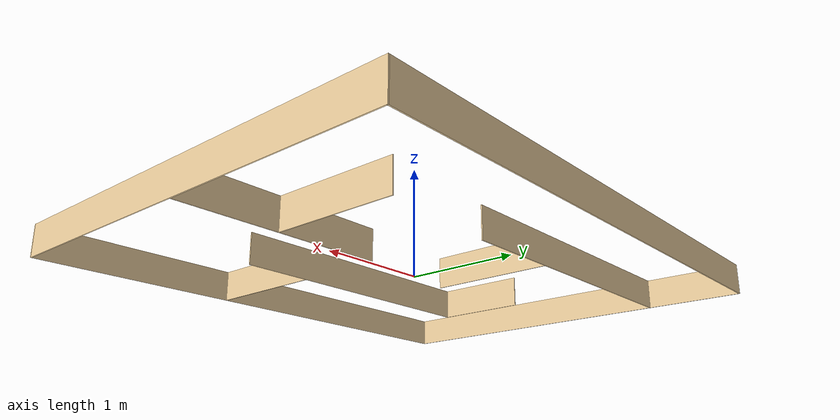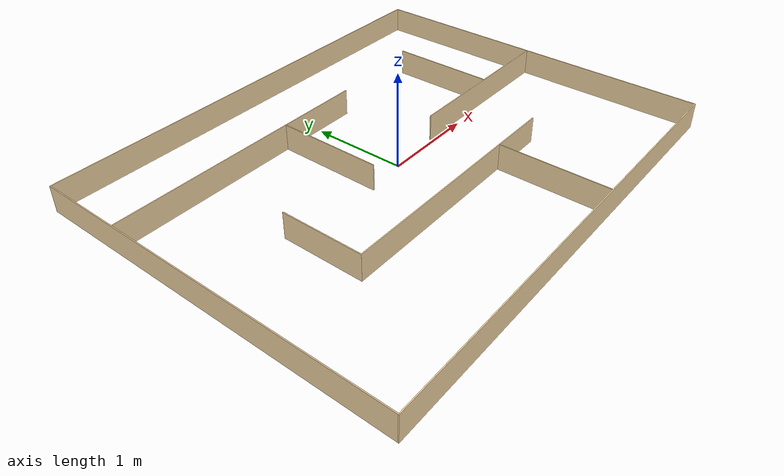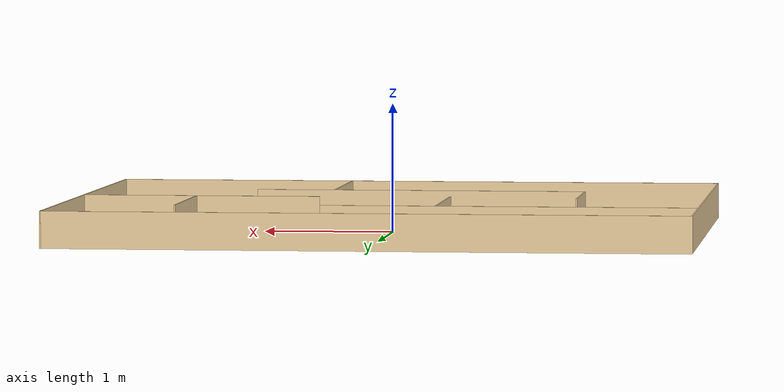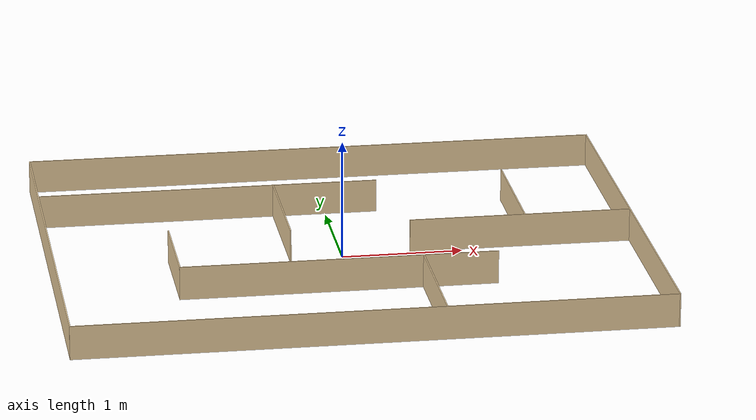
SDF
<?xml version='1.0'?>
<sdf version='1.6'>
  <model name='maze_2'>
    <link name='Wall_1'>
      <pose frame=''>0 -1.925 0 0 -0 0</pose>
      <self_collide>0</self_collide>
      <kinematic>0</kinematic>
      <visual name='Wall_1_Visual'>
        <pose frame=''>0 0 0.14 0 -0 0</pose>
        <geometry>
          <box>
            <size>4.86027 0.01 0.28</size>
          </box>
        </geometry>
        <material>
          <script>
            <uri>file://media/materials/scripts/gazebo.material</uri>
            <name>Gazebo/Grey</name>
          </script>
          <ambient>0.921569 0.807843 0.615686 1</ambient>
          <diffuse>0.7 0.7 0.7 1</diffuse>
          <specular>0.01 0.01 0.01 1</specular>
          <emissive>0 0 0 1</emissive>
        </material>
        <cast_shadows>1</cast_shadows>
        <transparency>0</transparency>
      </visual>
      <collision name='Wall_1_Collision'>
        <laser_retro>0</laser_retro>
        <max_contacts>10</max_contacts>
        <pose frame=''>0 0 0.14 0 -0 0</pose>
        <geometry>
          <box>
            <size>4.86027 0.01 0.28</size>
          </box>
        </geometry>
        <surface>
          <friction>
            <ode>
              <mu>1</mu>
              <mu2>1</mu2>
              <fdir1>0 0 0</fdir1>
              <slip1>0</slip1>
              <slip2>0</slip2>
            </ode>
            <torsional>
              <coefficient>1</coefficient>
              <patch_radius>0</patch_radius>
              <surface_radius>0</surface_radius>
              <use_patch_radius>1</use_patch_radius>
              <ode>
                <slip>0</slip>
              </ode>
            </torsional>
          </friction>
          <bounce>
            <restitution_coefficient>0</restitution_coefficient>
            <threshold>1e+06</threshold>
          </bounce>
          <contact>
            <collide_without_contact>0</collide_without_contact>
            <collide_without_contact_bitmask>1</collide_without_contact_bitmask>
            <collide_bitmask>1</collide_bitmask>
            <ode>
              <soft_cfm>0</soft_cfm>
              <soft_erp>0.2</soft_erp>
              <kp>1e+13</kp>
              <kd>1</kd>
              <max_vel>0.01</max_vel>
              <min_depth>0</min_depth>
            </ode>
            <bullet>
              <split_impulse>1</split_impulse>
              <split_impulse_penetration_threshold>-0.01</split_impulse_penetration_threshold>
              <soft_cfm>0</soft_cfm>
              <soft_erp>0.2</soft_erp>
              <kp>1e+13</kp>
              <kd>1</kd>
            </bullet>
          </contact>
        </surface>
      </collision>
    </link>
    <link name='Wall_10'>
      <pose frame=''>1.49951 0.041 0 0 -0 3.14159</pose>
      <self_collide>0</self_collide>
      <kinematic>0</kinematic>
      <visual name='Wall_10_Visual'>
        <pose frame=''>0 0 0.14 0 -0 0</pose>
        <geometry>
          <box>
            <size>1.86 0.01 0.28</size>
          </box>
        </geometry>
        <material>
          <script>
            <uri>file://media/materials/scripts/gazebo.material</uri>
            <name>Gazebo/Grey</name>
          </script>
          <ambient>0.921569 0.807843 0.615686 1</ambient>
          <diffuse>0.7 0.7 0.7 1</diffuse>
          <specular>0.01 0.01 0.01 1</specular>
          <emissive>0 0 0 1</emissive>
        </material>
        <cast_shadows>1</cast_shadows>
        <transparency>0</transparency>
      </visual>
      <collision name='Wall_10_Collision'>
        <laser_retro>0</laser_retro>
        <max_contacts>10</max_contacts>
        <pose frame=''>0 0 0.14 0 -0 0</pose>
        <geometry>
          <box>
            <size>1.86 0.01 0.28</size>
          </box>
        </geometry>
        <surface>
          <friction>
            <ode>
              <mu>1</mu>
              <mu2>1</mu2>
              <fdir1>0 0 0</fdir1>
              <slip1>0</slip1>
              <slip2>0</slip2>
            </ode>
            <torsional>
              <coefficient>1</coefficient>
              <patch_radius>0</patch_radius>
              <surface_radius>0</surface_radius>
              <use_patch_radius>1</use_patch_radius>
              <ode>
                <slip>0</slip>
              </ode>
            </torsional>
          </friction>
          <bounce>
            <restitution_coefficient>0</restitution_coefficient>
            <threshold>1e+06</threshold>
          </bounce>
          <contact>
            <collide_without_contact>0</collide_without_contact>
            <collide_without_contact_bitmask>1</collide_without_contact_bitmask>
            <collide_bitmask>1</collide_bitmask>
            <ode>
              <soft_cfm>0</soft_cfm>
              <soft_erp>0.2</soft_erp>
              <kp>1e+13</kp>
              <kd>1</kd>
              <max_vel>0.01</max_vel>
              <min_depth>0</min_depth>
            </ode>
            <bullet>
              <split_impulse>1</split_impulse>
              <split_impulse_penetration_threshold>-0.01</split_impulse_penetration_threshold>
              <soft_cfm>0</soft_cfm>
              <soft_erp>0.2</soft_erp>
              <kp>1e+13</kp>
              <kd>1</kd>
            </bullet>
          </contact>
        </surface>
      </collision>
    </link>
    <link name='Wall_12'>
      <pose frame=''>1.53594 0.594249 0 0 -0 1.5708</pose>
      <self_collide>0</self_collide>
      <kinematic>0</kinematic>
      <visual name='Wall_12_Visual'>
        <pose frame=''>0 0 0.14 0 -0 0</pose>
        <geometry>
          <box>
            <size>1.11 0.01 0.28</size>
          </box>
        </geometry>
        <material>
          <script>
            <uri>file://media/materials/scripts/gazebo.material</uri>
            <name>Gazebo/Grey</name>
          </script>
          <ambient>0.921569 0.807843 0.615686 1</ambient>
          <diffuse>0.7 0.7 0.7 1</diffuse>
          <specular>0.01 0.01 0.01 1</specular>
          <emissive>0 0 0 1</emissive>
        </material>
        <cast_shadows>1</cast_shadows>
        <transparency>0</transparency>
      </visual>
      <collision name='Wall_12_Collision'>
        <laser_retro>0</laser_retro>
        <max_contacts>10</max_contacts>
        <pose frame=''>0 0 0.14 0 -0 0</pose>
        <geometry>
          <box>
            <size>1.11 0.01 0.28</size>
          </box>
        </geometry>
        <surface>
          <friction>
            <ode>
              <mu>1</mu>
              <mu2>1</mu2>
              <fdir1>0 0 0</fdir1>
              <slip1>0</slip1>
              <slip2>0</slip2>
            </ode>
            <torsional>
              <coefficient>1</coefficient>
              <patch_radius>0</patch_radius>
              <surface_radius>0</surface_radius>
              <use_patch_radius>1</use_patch_radius>
              <ode>
                <slip>0</slip>
              </ode>
            </torsional>
          </friction>
          <bounce>
            <restitution_coefficient>0</restitution_coefficient>
            <threshold>1e+06</threshold>
          </bounce>
          <contact>
            <collide_without_contact>0</collide_without_contact>
            <collide_without_contact_bitmask>1</collide_without_contact_bitmask>
            <collide_bitmask>1</collide_bitmask>
            <ode>
              <soft_cfm>0</soft_cfm>
              <soft_erp>0.2</soft_erp>
              <kp>1e+13</kp>
              <kd>1</kd>
              <max_vel>0.01</max_vel>
              <min_depth>0</min_depth>
            </ode>
            <bullet>
              <split_impulse>1</split_impulse>
              <split_impulse_penetration_threshold>-0.01</split_impulse_penetration_threshold>
              <soft_cfm>0</soft_cfm>
              <soft_erp>0.2</soft_erp>
              <kp>1e+13</kp>
              <kd>1</kd>
            </bullet>
          </contact>
        </surface>
      </collision>
    </link>
    <link name='Wall_14'>
      <pose frame=''>-1.434 -0.346 0 0 0 -1.5708</pose>
      <self_collide>0</self_collide>
      <kinematic>0</kinematic>
      <visual name='Wall_14_Visual'>
        <pose frame=''>0 0 0.14 0 -0 0</pose>
        <geometry>
          <box>
            <size>0.859737 0.01 0.28</size>
          </box>
        </geometry>
        <material>
          <script>
            <uri>file://media/materials/scripts/gazebo.material</uri>
            <name>Gazebo/Grey</name>
          </script>
          <ambient>0.921569 0.807843 0.615686 1</ambient>
          <diffuse>0.7 0.7 0.7 1</diffuse>
          <specular>0.01 0.01 0.01 1</specular>
          <emissive>0 0 0 1</emissive>
        </material>
        <cast_shadows>1</cast_shadows>
        <transparency>0</transparency>
      </visual>
      <collision name='Wall_14_Collision'>
        <laser_retro>0</laser_retro>
        <max_contacts>10</max_contacts>
        <pose frame=''>0 0 0.14 0 -0 0</pose>
        <geometry>
          <box>
            <size>0.859737 0.01 0.28</size>
          </box>
        </geometry>
        <surface>
          <friction>
            <ode>
              <mu>1</mu>
              <mu2>1</mu2>
              <fdir1>0 0 0</fdir1>
              <slip1>0</slip1>
              <slip2>0</slip2>
            </ode>
            <torsional>
              <coefficient>1</coefficient>
              <patch_radius>0</patch_radius>
              <surface_radius>0</surface_radius>
              <use_patch_radius>1</use_patch_radius>
              <ode>
                <slip>0</slip>
              </ode>
            </torsional>
          </friction>
          <bounce>
            <restitution_coefficient>0</restitution_coefficient>
            <threshold>1e+06</threshold>
          </bounce>
          <contact>
            <collide_without_contact>0</collide_without_contact>
            <collide_without_contact_bitmask>1</collide_without_contact_bitmask>
            <collide_bitmask>1</collide_bitmask>
            <ode>
              <soft_cfm>0</soft_cfm>
              <soft_erp>0.2</soft_erp>
              <kp>1e+13</kp>
              <kd>1</kd>
              <max_vel>0.01</max_vel>
              <min_depth>0</min_depth>
            </ode>
            <bullet>
              <split_impulse>1</split_impulse>
              <split_impulse_penetration_threshold>-0.01</split_impulse_penetration_threshold>
              <soft_cfm>0</soft_cfm>
              <soft_erp>0.2</soft_erp>
              <kp>1e+13</kp>
              <kd>1</kd>
            </bullet>
          </contact>
        </surface>
      </collision>
    </link>
    <link name='Wall_17'>
      <pose frame=''>0.55442 -1.34744 -0 0 0 -1.5708</pose>
      <self_collide>0</self_collide>
      <kinematic>0</kinematic>
      <inertial>
        <inertia>
          <ixx>nan</ixx>
          <ixy>0</ixy>
          <ixz>0</ixz>
          <iyy>nan</iyy>
          <iyz>0</iyz>
          <izz>nan</izz>
        </inertia>
        <mass>0</mass>
        <pose frame=''>0 0 0 0 -0 0</pose>
      </inertial>
      <visual name='Wall_17_Visual'>
        <pose frame=''>0 0 0.14 0 -0 0</pose>
        <geometry>
          <box>
            <size>1.15797 0.01 0.28</size>
          </box>
        </geometry>
        <material>
          <script>
            <uri>file://media/materials/scripts/gazebo.material</uri>
            <name>Gazebo/Grey</name>
          </script>
          <ambient>0.921569 0.807843 0.615686 1</ambient>
          <diffuse>0.7 0.7 0.7 1</diffuse>
          <specular>0.01 0.01 0.01 1</specular>
          <emissive>0 0 0 1</emissive>
        </material>
        <cast_shadows>1</cast_shadows>
        <transparency>0</transparency>
      </visual>
      <collision name='Wall_17_Collision'>
        <laser_retro>0</laser_retro>
        <max_contacts>10</max_contacts>
        <pose frame=''>0 0 0.14 0 -0 0</pose>
        <geometry>
          <box>
            <size>1.15797 0.01 0.28</size>
          </box>
        </geometry>
        <surface>
          <friction>
            <ode>
              <mu>1</mu>
              <mu2>1</mu2>
              <fdir1>0 0 0</fdir1>
              <slip1>0</slip1>
              <slip2>0</slip2>
            </ode>
            <torsional>
              <coefficient>1</coefficient>
              <patch_radius>0</patch_radius>
              <surface_radius>0</surface_radius>
              <use_patch_radius>1</use_patch_radius>
              <ode>
                <slip>0</slip>
              </ode>
            </torsional>
          </friction>
          <bounce>
            <restitution_coefficient>0</restitution_coefficient>
            <threshold>1e+06</threshold>
          </bounce>
          <contact>
            <collide_without_contact>0</collide_without_contact>
            <collide_without_contact_bitmask>1</collide_without_contact_bitmask>
            <collide_bitmask>1</collide_bitmask>
            <ode>
              <soft_cfm>0</soft_cfm>
              <soft_erp>0.2</soft_erp>
              <kp>1e+13</kp>
              <kd>1</kd>
              <max_vel>0.01</max_vel>
              <min_depth>0</min_depth>
            </ode>
            <bullet>
              <split_impulse>1</split_impulse>
              <split_impulse_penetration_threshold>-0.01</split_impulse_penetration_threshold>
              <soft_cfm>0</soft_cfm>
              <soft_erp>0.2</soft_erp>
              <kp>1e+13</kp>
              <kd>1</kd>
            </bullet>
          </contact>
        </surface>
      </collision>
    </link>
    <link name='Wall_19'>
      <pose frame=''>-0.134 -0.771 0 0 -0 0</pose>
      <self_collide>0</self_collide>
      <kinematic>0</kinematic>
      <visual name='Wall_19_Visual'>
        <pose frame=''>0 0 0.14 0 -0 0</pose>
        <geometry>
          <box>
            <size>2.60982 0.01 0.28</size>
          </box>
        </geometry>
        <material>
          <script>
            <uri>file://media/materials/scripts/gazebo.material</uri>
            <name>Gazebo/Grey</name>
          </script>
          <ambient>0.921569 0.807843 0.615686 1</ambient>
          <diffuse>0.7 0.7 0.7 1</diffuse>
          <specular>0.01 0.01 0.01 1</specular>
          <emissive>0 0 0 1</emissive>
        </material>
        <cast_shadows>1</cast_shadows>
        <transparency>0</transparency>
      </visual>
      <collision name='Wall_19_Collision'>
        <laser_retro>0</laser_retro>
        <max_contacts>10</max_contacts>
        <pose frame=''>0 0 0.14 0 -0 0</pose>
        <geometry>
          <box>
            <size>2.60982 0.01 0.28</size>
          </box>
        </geometry>
        <surface>
          <friction>
            <ode>
              <mu>1</mu>
              <mu2>1</mu2>
              <fdir1>0 0 0</fdir1>
              <slip1>0</slip1>
              <slip2>0</slip2>
            </ode>
            <torsional>
              <coefficient>1</coefficient>
              <patch_radius>0</patch_radius>
              <surface_radius>0</surface_radius>
              <use_patch_radius>1</use_patch_radius>
              <ode>
                <slip>0</slip>
              </ode>
            </torsional>
          </friction>
          <bounce>
            <restitution_coefficient>0</restitution_coefficient>
            <threshold>1e+06</threshold>
          </bounce>
          <contact>
            <collide_without_contact>0</collide_without_contact>
            <collide_without_contact_bitmask>1</collide_without_contact_bitmask>
            <collide_bitmask>1</collide_bitmask>
            <ode>
              <soft_cfm>0</soft_cfm>
              <soft_erp>0.2</soft_erp>
              <kp>1e+13</kp>
              <kd>1</kd>
              <max_vel>0.01</max_vel>
              <min_depth>0</min_depth>
            </ode>
            <bullet>
              <split_impulse>1</split_impulse>
              <split_impulse_penetration_threshold>-0.01</split_impulse_penetration_threshold>
              <soft_cfm>0</soft_cfm>
              <soft_erp>0.2</soft_erp>
              <kp>1e+13</kp>
              <kd>1</kd>
            </bullet>
          </contact>
        </surface>
      </collision>
    </link>
    <link name='Wall_2'>
      <pose frame=''>2.425 0 0 0 -0 1.5708</pose>
      <self_collide>0</self_collide>
      <kinematic>0</kinematic>
      <visual name='Wall_2_Visual'>
        <pose frame=''>0 0 0.14 0 -0 0</pose>
        <geometry>
          <box>
            <size>3.86 0.01 0.28</size>
          </box>
        </geometry>
        <material>
          <script>
            <uri>file://media/materials/scripts/gazebo.material</uri>
            <name>Gazebo/Grey</name>
          </script>
          <ambient>0.921569 0.807843 0.615686 1</ambient>
          <diffuse>0.7 0.7 0.7 1</diffuse>
          <specular>0.01 0.01 0.01 1</specular>
          <emissive>0 0 0 1</emissive>
        </material>
        <cast_shadows>1</cast_shadows>
        <transparency>0</transparency>
      </visual>
      <collision name='Wall_2_Collision'>
        <laser_retro>0</laser_retro>
        <max_contacts>10</max_contacts>
        <pose frame=''>0 0 0.14 0 -0 0</pose>
        <geometry>
          <box>
            <size>3.86 0.01 0.28</size>
          </box>
        </geometry>
        <surface>
          <friction>
            <ode>
              <mu>1</mu>
              <mu2>1</mu2>
              <fdir1>0 0 0</fdir1>
              <slip1>0</slip1>
              <slip2>0</slip2>
            </ode>
            <torsional>
              <coefficient>1</coefficient>
              <patch_radius>0</patch_radius>
              <surface_radius>0</surface_radius>
              <use_patch_radius>1</use_patch_radius>
              <ode>
                <slip>0</slip>
              </ode>
            </torsional>
          </friction>
          <bounce>
            <restitution_coefficient>0</restitution_coefficient>
            <threshold>1e+06</threshold>
          </bounce>
          <contact>
            <collide_without_contact>0</collide_without_contact>
            <collide_without_contact_bitmask>1</collide_without_contact_bitmask>
            <collide_bitmask>1</collide_bitmask>
            <ode>
              <soft_cfm>0</soft_cfm>
              <soft_erp>0.2</soft_erp>
              <kp>1e+13</kp>
              <kd>1</kd>
              <max_vel>0.01</max_vel>
              <min_depth>0</min_depth>
            </ode>
            <bullet>
              <split_impulse>1</split_impulse>
              <split_impulse_penetration_threshold>-0.01</split_impulse_penetration_threshold>
              <soft_cfm>0</soft_cfm>
              <soft_erp>0.2</soft_erp>
              <kp>1e+13</kp>
              <kd>1</kd>
            </bullet>
          </contact>
        </surface>
      </collision>
    </link>
    <link name='Wall_3'>
      <pose frame=''>0 1.925 0 0 -0 3.14159</pose>
      <self_collide>0</self_collide>
      <kinematic>0</kinematic>
      <visual name='Wall_3_Visual'>
        <pose frame=''>0 0 0.14 0 -0 0</pose>
        <geometry>
          <box>
            <size>4.85973 0.01 0.28</size>
          </box>
        </geometry>
        <material>
          <script>
            <uri>file://media/materials/scripts/gazebo.material</uri>
            <name>Gazebo/Grey</name>
          </script>
          <ambient>0.921569 0.807843 0.615686 1</ambient>
          <diffuse>0.7 0.7 0.7 1</diffuse>
          <specular>0.01 0.01 0.01 1</specular>
          <emissive>0 0 0 1</emissive>
        </material>
        <cast_shadows>1</cast_shadows>
        <transparency>0</transparency>
      </visual>
      <collision name='Wall_3_Collision'>
        <laser_retro>0</laser_retro>
        <max_contacts>10</max_contacts>
        <pose frame=''>0 0 0.14 0 -0 0</pose>
        <geometry>
          <box>
            <size>4.85973 0.01 0.28</size>
          </box>
        </geometry>
        <surface>
          <friction>
            <ode>
              <mu>1</mu>
              <mu2>1</mu2>
              <fdir1>0 0 0</fdir1>
              <slip1>0</slip1>
              <slip2>0</slip2>
            </ode>
            <torsional>
              <coefficient>1</coefficient>
              <patch_radius>0</patch_radius>
              <surface_radius>0</surface_radius>
              <use_patch_radius>1</use_patch_radius>
              <ode>
                <slip>0</slip>
              </ode>
            </torsional>
          </friction>
          <bounce>
            <restitution_coefficient>0</restitution_coefficient>
            <threshold>1e+06</threshold>
          </bounce>
          <contact>
            <collide_without_contact>0</collide_without_contact>
            <collide_without_contact_bitmask>1</collide_without_contact_bitmask>
            <collide_bitmask>1</collide_bitmask>
            <ode>
              <soft_cfm>0</soft_cfm>
              <soft_erp>0.2</soft_erp>
              <kp>1e+13</kp>
              <kd>1</kd>
              <max_vel>0.01</max_vel>
              <min_depth>0</min_depth>
            </ode>
            <bullet>
              <split_impulse>1</split_impulse>
              <split_impulse_penetration_threshold>-0.01</split_impulse_penetration_threshold>
              <soft_cfm>0</soft_cfm>
              <soft_erp>0.2</soft_erp>
              <kp>1e+13</kp>
              <kd>1</kd>
            </bullet>
          </contact>
        </surface>
      </collision>
    </link>
    <link name='Wall_4'>
      <pose frame=''>-2.425 0 0 0 0 -1.5708</pose>
      <self_collide>0</self_collide>
      <kinematic>0</kinematic>
      <visual name='Wall_4_Visual'>
        <pose frame=''>0 0 0.14 0 -0 0</pose>
        <geometry>
          <box>
            <size>3.85952 0.01 0.28</size>
          </box>
        </geometry>
        <material>
          <script>
            <uri>file://media/materials/scripts/gazebo.material</uri>
            <name>Gazebo/Grey</name>
          </script>
          <ambient>0.921569 0.807843 0.615686 1</ambient>
          <diffuse>0.7 0.7 0.7 1</diffuse>
          <specular>0.01 0.01 0.01 1</specular>
          <emissive>0 0 0 1</emissive>
        </material>
        <cast_shadows>1</cast_shadows>
        <transparency>0</transparency>
      </visual>
      <collision name='Wall_4_Collision'>
        <laser_retro>0</laser_retro>
        <max_contacts>10</max_contacts>
        <pose frame=''>0 0 0.14 0 -0 0</pose>
        <geometry>
          <box>
            <size>3.85952 0.01 0.28</size>
          </box>
        </geometry>
        <surface>
          <friction>
            <ode>
              <mu>1</mu>
              <mu2>1</mu2>
              <fdir1>0 0 0</fdir1>
              <slip1>0</slip1>
              <slip2>0</slip2>
            </ode>
            <torsional>
              <coefficient>1</coefficient>
              <patch_radius>0</patch_radius>
              <surface_radius>0</surface_radius>
              <use_patch_radius>1</use_patch_radius>
              <ode>
                <slip>0</slip>
              </ode>
            </torsional>
          </friction>
          <bounce>
            <restitution_coefficient>0</restitution_coefficient>
            <threshold>1e+06</threshold>
          </bounce>
          <contact>
            <collide_without_contact>0</collide_without_contact>
            <collide_without_contact_bitmask>1</collide_without_contact_bitmask>
            <collide_bitmask>1</collide_bitmask>
            <ode>
              <soft_cfm>0</soft_cfm>
              <soft_erp>0.2</soft_erp>
              <kp>1e+13</kp>
              <kd>1</kd>
              <max_vel>0.01</max_vel>
              <min_depth>0</min_depth>
            </ode>
            <bullet>
              <split_impulse>1</split_impulse>
              <split_impulse_penetration_threshold>-0.01</split_impulse_penetration_threshold>
              <soft_cfm>0</soft_cfm>
              <soft_erp>0.2</soft_erp>
              <kp>1e+13</kp>
              <kd>1</kd>
            </bullet>
          </contact>
        </surface>
      </collision>
    </link>
    <link name='Wall_6'>
      <pose frame=''>-0.990759 1.04323 0 0 -0 0</pose>
      <self_collide>0</self_collide>
      <kinematic>0</kinematic>
      <visual name='Wall_6_Visual'>
        <pose frame=''>0 0 0.14 0 -0 0</pose>
        <geometry>
          <box>
            <size>2.86 0.01 0.28</size>
          </box>
        </geometry>
        <material>
          <script>
            <uri>file://media/materials/scripts/gazebo.material</uri>
            <name>Gazebo/Grey</name>
          </script>
          <ambient>0.921569 0.807843 0.615686 1</ambient>
          <diffuse>0.7 0.7 0.7 1</diffuse>
          <specular>0.01 0.01 0.01 1</specular>
          <emissive>0 0 0 1</emissive>
        </material>
        <cast_shadows>1</cast_shadows>
        <transparency>0</transparency>
      </visual>
      <collision name='Wall_6_Collision'>
        <laser_retro>0</laser_retro>
        <max_contacts>10</max_contacts>
        <pose frame=''>0 0 0.14 0 -0 0</pose>
        <geometry>
          <box>
            <size>2.86 0.01 0.28</size>
          </box>
        </geometry>
        <surface>
          <friction>
            <ode>
              <mu>1</mu>
              <mu2>1</mu2>
              <fdir1>0 0 0</fdir1>
              <slip1>0</slip1>
              <slip2>0</slip2>
            </ode>
            <torsional>
              <coefficient>1</coefficient>
              <patch_radius>0</patch_radius>
              <surface_radius>0</surface_radius>
              <use_patch_radius>1</use_patch_radius>
              <ode>
                <slip>0</slip>
              </ode>
            </torsional>
          </friction>
          <bounce>
            <restitution_coefficient>0</restitution_coefficient>
            <threshold>1e+06</threshold>
          </bounce>
          <contact>
            <collide_without_contact>0</collide_without_contact>
            <collide_without_contact_bitmask>1</collide_without_contact_bitmask>
            <collide_bitmask>1</collide_bitmask>
            <ode>
              <soft_cfm>0</soft_cfm>
              <soft_erp>0.2</soft_erp>
              <kp>1e+13</kp>
              <kd>1</kd>
              <max_vel>0.01</max_vel>
              <min_depth>0</min_depth>
            </ode>
            <bullet>
              <split_impulse>1</split_impulse>
              <split_impulse_penetration_threshold>-0.01</split_impulse_penetration_threshold>
              <soft_cfm>0</soft_cfm>
              <soft_erp>0.2</soft_erp>
              <kp>1e+13</kp>
              <kd>1</kd>
            </bullet>
          </contact>
        </surface>
      </collision>
    </link>
    <link name='Wall_8'>
      <pose frame=''>-0.439251 0.487993 0 0 0 -1.5708</pose>
      <self_collide>0</self_collide>
      <kinematic>0</kinematic>
      <visual name='Wall_8_Visual'>
        <pose frame=''>0 0 0.14 0 -0 0</pose>
        <geometry>
          <box>
            <size>1.11 0.01 0.28</size>
          </box>
        </geometry>
        <material>
          <script>
            <uri>file://media/materials/scripts/gazebo.material</uri>
            <name>Gazebo/Grey</name>
          </script>
          <ambient>0.921569 0.807843 0.615686 1</ambient>
          <diffuse>0.7 0.7 0.7 1</diffuse>
          <specular>0.01 0.01 0.01 1</specular>
          <emissive>0 0 0 1</emissive>
        </material>
        <cast_shadows>1</cast_shadows>
        <transparency>0</transparency>
      </visual>
      <collision name='Wall_8_Collision'>
        <laser_retro>0</laser_retro>
        <max_contacts>10</max_contacts>
        <pose frame=''>0 0 0.14 0 -0 0</pose>
        <geometry>
          <box>
            <size>1.11 0.01 0.28</size>
          </box>
        </geometry>
        <surface>
          <friction>
            <ode>
              <mu>1</mu>
              <mu2>1</mu2>
              <fdir1>0 0 0</fdir1>
              <slip1>0</slip1>
              <slip2>0</slip2>
            </ode>
            <torsional>
              <coefficient>1</coefficient>
              <patch_radius>0</patch_radius>
              <surface_radius>0</surface_radius>
              <use_patch_radius>1</use_patch_radius>
              <ode>
                <slip>0</slip>
              </ode>
            </torsional>
          </friction>
          <bounce>
            <restitution_coefficient>0</restitution_coefficient>
            <threshold>1e+06</threshold>
          </bounce>
          <contact>
            <collide_without_contact>0</collide_without_contact>
            <collide_without_contact_bitmask>1</collide_without_contact_bitmask>
            <collide_bitmask>1</collide_bitmask>
            <ode>
              <soft_cfm>0</soft_cfm>
              <soft_erp>0.2</soft_erp>
              <kp>1e+13</kp>
              <kd>1</kd>
              <max_vel>0.01</max_vel>
              <min_depth>0</min_depth>
            </ode>
            <bullet>
              <split_impulse>1</split_impulse>
              <split_impulse_penetration_threshold>-0.01</split_impulse_penetration_threshold>
              <soft_cfm>0</soft_cfm>
              <soft_erp>0.2</soft_erp>
              <kp>1e+13</kp>
              <kd>1</kd>
            </bullet>
          </contact>
        </surface>
      </collision>
    </link>
    <static>1</static>
    <allow_auto_disable>1</allow_auto_disable>
  </model>
</sdf>
